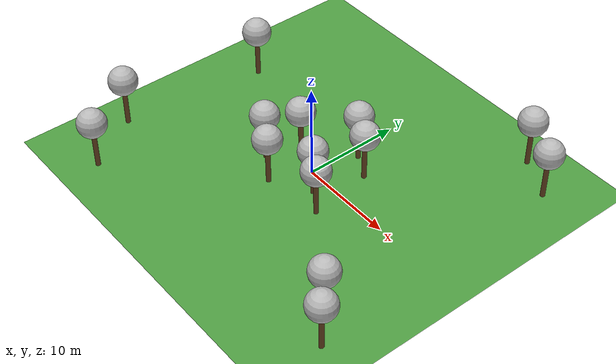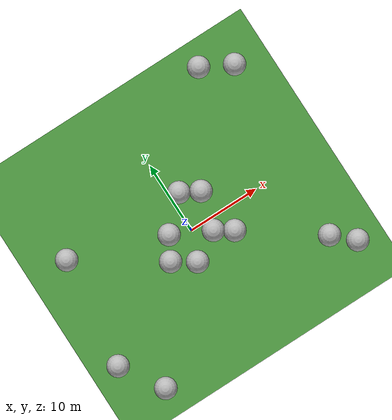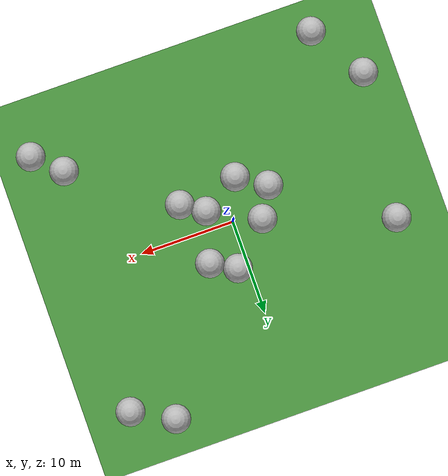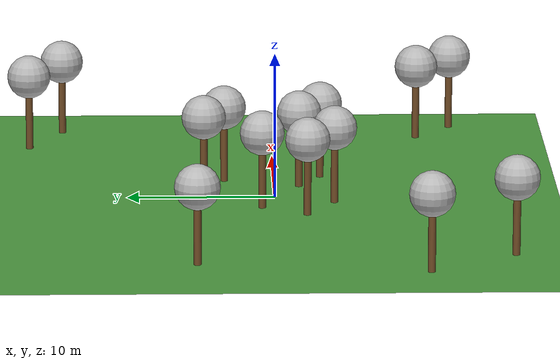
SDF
<?xml version="1.0" ?>
<?xml-model href="http://sdformat.org/schemas/root.xsd" schematypens="http://www.w3.org/2001/XMLSchema"?>
<sdf version="1.5">
  <world name="default">
    <plugin name="mrs_gazebo_static_transform_republisher_plugin" filename="libMrsGazeboCommonResources_StaticTransformRepublisher.so"/>

    <!-- coordinate system {-->
    <spherical_coordinates>
      <surface_model>EARTH_WGS84</surface_model>
      <latitude_deg>47.397743</latitude_deg>
      <longitude_deg>8.545594</longitude_deg>
      <elevation>0.0</elevation>
      <heading_deg>0</heading_deg>
    </spherical_coordinates>

    <!-- physics engine {-->
    <physics name="default_physics" default="0" type="ode">
      <gravity>0 0 -9.8066</gravity>
      <ode>
        <solver>
          <type>quick</type>
          <iters>50</iters>
          <sor>1.0</sor>
          <use_dynamic_moi_rescaling>0</use_dynamic_moi_rescaling>
        </solver>
        <constraints>
          <cfm>0</cfm>
          <erp>0.2</erp>
          <contact_max_correcting_vel>1000</contact_max_correcting_vel>
          <contact_surface_layer>0.001</contact_surface_layer>
        </constraints>
      </ode>
      <max_step_size>0.001</max_step_size>
      <real_time_factor>1</real_time_factor>
      <real_time_update_rate>1000</real_time_update_rate>
      <magnetic_field>6.0e-06 2.3e-05 -4.2e-05</magnetic_field>
    </physics>

    <!-- scene {-->
    <scene>
      <shadows>false</shadows>
    </scene>

    <!-- sun {-->
    <light type="directional" name="sun">
      <cast_shadows>true</cast_shadows>
      <pose>250 250 600 0 0 0</pose>
      <diffuse>0.8 0.8 0.8 1</diffuse>
      <specular>0.2 0.2 0.2 1</specular>
      <attenuation>
        <range>1000</range>
        <constant>0.9</constant>
        <linear>0.01</linear>
        <quadratic>0.001</quadratic>
      </attenuation>
      <direction>0 0 -1</direction>
    </light>

    <!-- Trees {-->
    <!-- Centered at (0,0) {-->
    <model name='tree_simple001'>
      <static>1</static>
      <link name='link'>
        <pose frame=''>0 0 0.1 0 -0 0</pose>
        <collision name='collision_trunk'>
          <pose frame=''>0 0 2 0 -0 0</pose>
          <geometry>
            <cylinder>
              <radius>0.25</radius>
              <length>4</length>
            </cylinder>
          </geometry>
        </collision>
        <collision name='collision_treetop'>
          <pose frame=''>0 0 5.2 0 -0 0</pose>
          <geometry>
            <sphere>
              <radius>1.5</radius>
            </sphere>
          </geometry>
        </collision>
        <visual name='trunk'>
          <pose frame=''>0 0 2 0 -0 0</pose>
          <geometry>
            <cylinder>
              <radius>0.25</radius>
              <length>4</length>
            </cylinder>
          </geometry>
          <material>
            <script>
              <uri>model://tree_simple/scripts</uri>
              <uri>model://tree_simple/materials/textures</uri>
              <name>TreeSimple/Trunk</name>
            </script>
          </material>
        </visual>
        <visual name='treetop'>
          <pose frame=''>0 0 5.2 0 -0 0</pose>
          <geometry>
            <sphere>
              <radius>1.5</radius>
            </sphere>
          </geometry>
          <material>
            <script>
              <uri>model://tree_simple/scripts</uri>
              <uri>model://tree_simple/materials/textures</uri>
              <name>TreeSimple/Treetop</name>
            </script>
          </material>
        </visual>
        <self_collide>0</self_collide>
        <kinematic>0</kinematic>
      </link>
      <pose frame=''>2.3 -1.7 0 0 -0 0</pose>
    </model>

    <model name='tree_simple002'>
      <static>1</static>
      <link name='link'>
        <pose frame=''>0 0 0.1 0 -0 0</pose>
        <collision name='collision_trunk'>
          <pose frame=''>0 0 2 0 -0 0</pose>
          <geometry>
            <cylinder>
              <radius>0.25</radius>
              <length>4</length>
            </cylinder>
          </geometry>
        </collision>
        <collision name='collision_treetop'>
          <pose frame=''>0 0 5.2 0 -0 0</pose>
          <geometry>
            <sphere>
              <radius>1.5</radius>
            </sphere>
          </geometry>
        </collision>
        <visual name='trunk'>
          <pose frame=''>0 0 2 0 -0 0</pose>
          <geometry>
            <cylinder>
              <radius>0.25</radius>
              <length>4</length>
            </cylinder>
          </geometry>
          <material>
            <script>
              <uri>model://tree_simple/scripts</uri>
              <uri>model://tree_simple/materials/textures</uri>
              <name>TreeSimple/Trunk</name>
            </script>
          </material>
        </visual>
        <visual name='treetop'>
          <pose frame=''>0 0 5.2 0 -0 0</pose>
          <geometry>
            <sphere>
              <radius>1.5</radius>
            </sphere>
          </geometry>
          <material>
            <script>
              <uri>model://tree_simple/scripts</uri>
              <uri>model://tree_simple/materials/textures</uri>
              <name>TreeSimple/Treetop</name>
            </script>
          </material>
        </visual>
        <self_collide>0</self_collide>
        <kinematic>0</kinematic>
      </link>
      <pose frame=''>-2.8 0.9 0 0 -0 0</pose>
    </model>

    <model name='tree_simple003'>
      <static>1</static>
      <link name='link'>
        <pose frame=''>0 0 0.1 0 -0 0</pose>
        <collision name='collision_trunk'>
          <pose frame=''>0 0 2 0 -0 0</pose>
          <geometry>
            <cylinder>
              <radius>0.25</radius>
              <length>4</length>
            </cylinder>
          </geometry>
        </collision>
        <collision name='collision_treetop'>
          <pose frame=''>0 0 5.2 0 -0 0</pose>
          <geometry>
            <sphere>
              <radius>1.5</radius>
            </sphere>
          </geometry>
        </collision>
        <visual name='trunk'>
          <pose frame=''>0 0 2 0 -0 0</pose>
          <geometry>
            <cylinder>
              <radius>0.25</radius>
              <length>4</length>
            </cylinder>
          </geometry>
          <material>
            <script>
              <uri>model://tree_simple/scripts</uri>
              <uri>model://tree_simple/materials/textures</uri>
              <name>TreeSimple/Trunk</name>
            </script>
          </material>
        </visual>
        <visual name='treetop'>
          <pose frame=''>0 0 5.2 0 -0 0</pose>
          <geometry>
            <sphere>
              <radius>1.5</radius>
            </sphere>
          </geometry>
          <material>
            <script>
              <uri>model://tree_simple/scripts</uri>
              <uri>model://tree_simple/materials/textures</uri>
              <name>TreeSimple/Treetop</name>
            </script>
          </material>
        </visual>
        <self_collide>0</self_collide>
        <kinematic>0</kinematic>
      </link>
      <pose frame=''>3.7 3.4 0 0 -0 0</pose>
    </model>

    <model name='tree_simple004'>
      <static>1</static>
      <link name='link'>
        <pose frame=''>0 0 0.1 0 -0 0</pose>
        <collision name='collision_trunk'>
          <pose frame=''>0 0 2 0 -0 0</pose>
          <geometry>
            <cylinder>
              <radius>0.25</radius>
              <length>4</length>
            </cylinder>
          </geometry>
        </collision>
        <collision name='collision_treetop'>
          <pose frame=''>0 0 5.2 0 -0 0</pose>
          <geometry>
            <sphere>
              <radius>1.5</radius>
            </sphere>
          </geometry>
        </collision>
        <visual name='trunk'>
          <pose frame=''>0 0 2 0 -0 0</pose>
          <geometry>
            <cylinder>
              <radius>0.25</radius>
              <length>4</length>
            </cylinder>
          </geometry>
          <material>
            <script>
              <uri>model://tree_simple/scripts</uri>
              <uri>model://tree_simple/materials/textures</uri>
              <name>TreeSimple/Trunk</name>
            </script>
          </material>
        </visual>
        <visual name='treetop'>
          <pose frame=''>0 0 5.2 0 -0 0</pose>
          <geometry>
            <sphere>
              <radius>1.5</radius>
            </sphere>
          </geometry>
          <material>
            <script>
              <uri>model://tree_simple/scripts</uri>
              <uri>model://tree_simple/materials/textures</uri>
              <name>TreeSimple/Treetop</name>
            </script>
          </material>
        </visual>
        <self_collide>0</self_collide>
        <kinematic>0</kinematic>
      </link>
      <pose frame=''>-4.5 -2.1 0 0 -0 0</pose>
    </model>

    <model name='tree_simple005'>
      <static>1</static>
      <link name='link'>
        <pose frame=''>0 0 0.1 0 -0 0</pose>
        <collision name='collision_trunk'>
          <pose frame=''>0 0 2 0 -0 0</pose>
          <geometry>
            <cylinder>
              <radius>0.25</radius>
              <length>4</length>
            </cylinder>
          </geometry>
        </collision>
        <collision name='collision_treetop'>
          <pose frame=''>0 0 5.2 0 -0 0</pose>
          <geometry>
            <sphere>
              <radius>1.5</radius>
            </sphere>
          </geometry>
        </collision>
        <visual name='trunk'>
          <pose frame=''>0 0 2 0 -0 0</pose>
          <geometry>
            <cylinder>
              <radius>0.25</radius>
              <length>4</length>
            </cylinder>
          </geometry>
          <material>
            <script>
              <uri>model://tree_simple/scripts</uri>
              <uri>model://tree_simple/materials/textures</uri>
              <name>TreeSimple/Trunk</name>
            </script>
          </material>
        </visual>
        <visual name='treetop'>
          <pose frame=''>0 0 5.2 0 -0 0</pose>
          <geometry>
            <sphere>
              <radius>1.5</radius>
            </sphere>
          </geometry>
          <material>
            <script>
              <uri>model://tree_simple/scripts</uri>
              <uri>model://tree_simple/materials/textures</uri>
              <name>TreeSimple/Treetop</name>
            </script>
          </material>
        </visual>
        <self_collide>0</self_collide>
        <kinematic>0</kinematic>
      </link>
      <pose frame=''>1.2 4.8 0 0 -0 0</pose>
    </model>

    <model name='tree_simple006'>
      <static>1</static>
      <link name='link'>
        <pose frame=''>0 0 0.1 0 -0 0</pose>
        <collision name='collision_trunk'>
          <pose frame=''>0 0 2 0 -0 0</pose>
          <geometry>
            <cylinder>
              <radius>0.25</radius>
              <length>4</length>
            </cylinder>
          </geometry>
        </collision>
        <collision name='collision_treetop'>
          <pose frame=''>0 0 5.2 0 -0 0</pose>
          <geometry>
            <sphere>
              <radius>1.5</radius>
            </sphere>
          </geometry>
        </collision>
        <visual name='trunk'>
          <pose frame=''>0 0 2 0 -0 0</pose>
          <geometry>
            <cylinder>
              <radius>0.25</radius>
              <length>4</length>
            </cylinder>
          </geometry>
          <material>
            <script>
              <uri>model://tree_simple/scripts</uri>
              <uri>model://tree_simple/materials/textures</uri>
              <name>TreeSimple/Trunk</name>
            </script>
          </material>
        </visual>
        <visual name='treetop'>
          <pose frame=''>0 0 5.2 0 -0 0</pose>
          <geometry>
            <sphere>
              <radius>1.5</radius>
            </sphere>
          </geometry>
          <material>
            <script>
              <uri>model://tree_simple/scripts</uri>
              <uri>model://tree_simple/materials/textures</uri>
              <name>TreeSimple/Treetop</name>
            </script>
          </material>
        </visual>
        <self_collide>0</self_collide>
        <kinematic>0</kinematic>
      </link>
      <pose frame=''>-1.6 -4.0 0 0 -0 0</pose>
    </model>

    <model name='tree_simple007'>
      <static>1</static>
      <link name='link'>
        <pose frame=''>0 0 0.1 0 -0 0</pose>
        <collision name='collision_trunk'>
          <pose frame=''>0 0 2 0 -0 0</pose>
          <geometry>
            <cylinder>
              <radius>0.25</radius>
              <length>4</length>
            </cylinder>
          </geometry>
        </collision>
        <collision name='collision_treetop'>
          <pose frame=''>0 0 5.2 0 -0 0</pose>
          <geometry>
            <sphere>
              <radius>1.5</radius>
            </sphere>
          </geometry>
        </collision>
        <visual name='trunk'>
          <pose frame=''>0 0 2 0 -0 0</pose>
          <geometry>
            <cylinder>
              <radius>0.25</radius>
              <length>4</length>
            </cylinder>
          </geometry>
          <material>
            <script>
              <uri>model://tree_simple/scripts</uri>
              <uri>model://tree_simple/materials/textures</uri>
              <name>TreeSimple/Trunk</name>
            </script>
          </material>
        </visual>
        <visual name='treetop'>
          <pose frame=''>0 0 5.2 0 -0 0</pose>
          <geometry>
            <sphere>
              <radius>1.5</radius>
            </sphere>
          </geometry>
          <material>
            <script>
              <uri>model://tree_simple/scripts</uri>
              <uri>model://tree_simple/materials/textures</uri>
              <name>TreeSimple/Treetop</name>
            </script>
          </material>
        </visual>
        <self_collide>0</self_collide>
        <kinematic>0</kinematic>
      </link>
      <pose frame=''>4.6 -3.2 0 0 -0 0</pose>
    </model>

    <!-- Shifted {-->
    <model name='tree_simple008'>
      <static>1</static>
      <link name='link'>
        <pose frame=''>0 0 0.1 0 -0 0</pose>
        <collision name='collision_trunk'>
          <pose frame=''>0 0 2 0 -0 0</pose>
          <geometry>
            <cylinder>
              <radius>0.25</radius>
              <length>4</length>
            </cylinder>
          </geometry>
        </collision>
        <collision name='collision_treetop'>
          <pose frame=''>0 0 5.2 0 -0 0</pose>
          <geometry>
            <sphere>
              <radius>1.5</radius>
            </sphere>
          </geometry>
        </collision>
        <visual name='trunk'>
          <pose frame=''>0 0 2 0 -0 0</pose>
          <geometry>
            <cylinder>
              <radius>0.25</radius>
              <length>4</length>
            </cylinder>
          </geometry>
          <material>
            <script>
              <uri>model://tree_simple/scripts</uri>
              <uri>model://tree_simple/materials/textures</uri>
              <name>TreeSimple/Trunk</name>
            </script>
          </material>
        </visual>
        <visual name='treetop'>
          <pose frame=''>0 0 5.2 0 -0 0</pose>
          <geometry>
            <sphere>
              <radius>1.5</radius>
            </sphere>
          </geometry>
          <material>
            <script>
              <uri>model://tree_simple/scripts</uri>
              <uri>model://tree_simple/materials/textures</uri>
              <name>TreeSimple/Treetop</name>
            </script>
          </material>
        </visual>
        <self_collide>0</self_collide>
        <kinematic>0</kinematic>
      </link>
      <pose frame=''>14.5 -10.3 0 0 -0 0</pose>
    </model>

    <model name='tree_simple009'>
      <static>1</static>
      <link name='link'>
        <pose frame=''>0 0 0.1 0 -0 0</pose>
        <collision name='collision_trunk'>
          <pose frame=''>0 0 2 0 -0 0</pose>
          <geometry>
            <cylinder>
              <radius>0.25</radius>
              <length>4</length>
            </cylinder>
          </geometry>
        </collision>
        <collision name='collision_treetop'>
          <pose frame=''>0 0 5.2 0 -0 0</pose>
          <geometry>
            <sphere>
              <radius>1.5</radius>
            </sphere>
          </geometry>
        </collision>
        <visual name='trunk'>
          <pose frame=''>0 0 2 0 -0 0</pose>
          <geometry>
            <cylinder>
              <radius>0.25</radius>
              <length>4</length>
            </cylinder>
          </geometry>
          <material>
            <script>
              <uri>model://tree_simple/scripts</uri>
              <uri>model://tree_simple/materials/textures</uri>
              <name>TreeSimple/Trunk</name>
            </script>
          </material>
        </visual>
        <visual name='treetop'>
          <pose frame=''>0 0 5.2 0 -0 0</pose>
          <geometry>
            <sphere>
              <radius>1.5</radius>
            </sphere>
          </geometry>
          <material>
            <script>
              <uri>model://tree_simple/scripts</uri>
              <uri>model://tree_simple/materials/textures</uri>
              <name>TreeSimple/Treetop</name>
            </script>
          </material>
        </visual>
        <self_collide>0</self_collide>
        <kinematic>0</kinematic>
      </link>
    <pose frame=''>-15.6 5.3 0 0 -0 0</pose>
    </model>

    <model name='tree_simple010'>
      <static>1</static>
      <link name='link'>
        <pose frame=''>0 0 0.1 0 -0 0</pose>
        <collision name='collision_trunk'>
          <pose frame=''>0 0 2 0 -0 0</pose>
          <geometry>
            <cylinder>
              <radius>0.25</radius>
              <length>4</length>
            </cylinder>
          </geometry>
        </collision>
        <collision name='collision_treetop'>
          <pose frame=''>0 0 5.2 0 -0 0</pose>
          <geometry>
            <sphere>
              <radius>1.5</radius>
            </sphere>
          </geometry>
        </collision>
        <visual name='trunk'>
          <pose frame=''>0 0 2 0 -0 0</pose>
          <geometry>
            <cylinder>
              <radius>0.25</radius>
              <length>4</length>
            </cylinder>
          </geometry>
          <material>
            <script>
              <uri>model://tree_simple/scripts</uri>
              <uri>model://tree_simple/materials/textures</uri>
              <name>TreeSimple/Trunk</name>
            </script>
          </material>
        </visual>
        <visual name='treetop'>
          <pose frame=''>0 0 5.2 0 -0 0</pose>
          <geometry>
            <sphere>
              <radius>1.5</radius>
            </sphere>
          </geometry>
          <material>
            <script>
              <uri>model://tree_simple/scripts</uri>
              <uri>model://tree_simple/materials/textures</uri>
              <name>TreeSimple/Treetop</name>
            </script>
          </material>
        </visual>
        <self_collide>0</self_collide>
        <kinematic>0</kinematic>
      </link>
    <pose frame=''>16.2 14.8 0 0 -0 0</pose>
    </model>

    <model name='tree_simple011'>
      <static>1</static>
      <link name='link'>
        <pose frame=''>0 0 0.1 0 -0 0</pose>
        <collision name='collision_trunk'>
          <pose frame=''>0 0 2 0 -0 0</pose>
          <geometry>
            <cylinder>
              <radius>0.25</radius>
              <length>4</length>
            </cylinder>
          </geometry>
        </collision>
        <collision name='collision_treetop'>
          <pose frame=''>0 0 5.2 0 -0 0</pose>
          <geometry>
            <sphere>
              <radius>1.5</radius>
            </sphere>
          </geometry>
        </collision>
        <visual name='trunk'>
          <pose frame=''>0 0 2 0 -0 0</pose>
          <geometry>
            <cylinder>
              <radius>0.25</radius>
              <length>4</length>
            </cylinder>
          </geometry>
          <material>
            <script>
              <uri>model://tree_simple/scripts</uri>
              <uri>model://tree_simple/materials/textures</uri>
              <name>TreeSimple/Trunk</name>
            </script>
          </material>
        </visual>
        <visual name='treetop'>
          <pose frame=''>0 0 5.2 0 -0 0</pose>
          <geometry>
            <sphere>
              <radius>1.5</radius>
            </sphere>
          </geometry>
          <material>
            <script>
              <uri>model://tree_simple/scripts</uri>
              <uri>model://tree_simple/materials/textures</uri>
              <name>TreeSimple/Treetop</name>
            </script>
          </material>
        </visual>
        <self_collide>0</self_collide>
        <kinematic>0</kinematic>
      </link>
    <pose frame=''>-17.4 -9.7 0 0 -0 0</pose>
    </model>

    <model name='tree_simple012'>
      <static>1</static>
      <link name='link'>
        <pose frame=''>0 0 0.1 0 -0 0</pose>
        <collision name='collision_trunk'>
          <pose frame=''>0 0 2 0 -0 0</pose>
          <geometry>
            <cylinder>
              <radius>0.25</radius>
              <length>4</length>
            </cylinder>
          </geometry>
        </collision>
        <collision name='collision_treetop'>
          <pose frame=''>0 0 5.2 0 -0 0</pose>
          <geometry>
            <sphere>
              <radius>1.5</radius>
            </sphere>
          </geometry>
        </collision>
        <visual name='trunk'>
          <pose frame=''>0 0 2 0 -0 0</pose>
          <geometry>
            <cylinder>
              <radius>0.25</radius>
              <length>4</length>
            </cylinder>
          </geometry>
          <material>
            <script>
              <uri>model://tree_simple/scripts</uri>
              <uri>model://tree_simple/materials/textures</uri>
              <name>TreeSimple/Trunk</name>
            </script>
          </material>
        </visual>
        <visual name='treetop'>
          <pose frame=''>0 0 5.2 0 -0 0</pose>
          <geometry>
            <sphere>
              <radius>1.5</radius>
            </sphere>
          </geometry>
          <material>
            <script>
              <uri>model://tree_simple/scripts</uri>
              <uri>model://tree_simple/materials/textures</uri>
              <name>TreeSimple/Treetop</name>
            </script>
          </material>
        </visual>
        <self_collide>0</self_collide>
        <kinematic>0</kinematic>
      </link>
    <pose frame=''>12.1 17.0 0 0 -0 0</pose>
    </model>

    <model name='tree_simple013'>
      <static>1</static>
      <link name='link'>
        <pose frame=''>0 0 0.1 0 -0 0</pose>
        <collision name='collision_trunk'>
          <pose frame=''>0 0 2 0 -0 0</pose>
          <geometry>
            <cylinder>
              <radius>0.25</radius>
              <length>4</length>
            </cylinder>
          </geometry>
        </collision>
        <collision name='collision_treetop'>
          <pose frame=''>0 0 5.2 0 -0 0</pose>
          <geometry>
            <sphere>
              <radius>1.5</radius>
            </sphere>
          </geometry>
        </collision>
        <visual name='trunk'>
          <pose frame=''>0 0 2 0 -0 0</pose>
          <geometry>
            <cylinder>
              <radius>0.25</radius>
              <length>4</length>
            </cylinder>
          </geometry>
          <material>
            <script>
              <uri>model://tree_simple/scripts</uri>
              <uri>model://tree_simple/materials/textures</uri>
              <name>TreeSimple/Trunk</name>
            </script>
          </material>
        </visual>
        <visual name='treetop'>
          <pose frame=''>0 0 5.2 0 -0 0</pose>
          <geometry>
            <sphere>
              <radius>1.5</radius>
            </sphere>
          </geometry>
          <material>
            <script>
              <uri>model://tree_simple/scripts</uri>
              <uri>model://tree_simple/materials/textures</uri>
              <name>TreeSimple/Treetop</name>
            </script>
          </material>
        </visual>
        <self_collide>0</self_collide>
        <kinematic>0</kinematic>
      </link>
    <pose frame=''>-13.8 -15.4 0 0 -0 0</pose>
    </model>

    <model name='tree_simple014'>
      <static>1</static>
      <link name='link'>
        <pose frame=''>0 0 0.1 0 -0 0</pose>
        <collision name='collision_trunk'>
          <pose frame=''>0 0 2 0 -0 0</pose>
          <geometry>
            <cylinder>
              <radius>0.25</radius>
              <length>4</length>
            </cylinder>
          </geometry>
        </collision>
        <collision name='collision_treetop'>
          <pose frame=''>0 0 5.2 0 -0 0</pose>
          <geometry>
            <sphere>
              <radius>1.5</radius>
            </sphere>
          </geometry>
        </collision>
        <visual name='trunk'>
          <pose frame=''>0 0 2 0 -0 0</pose>
          <geometry>
            <cylinder>
              <radius>0.25</radius>
              <length>4</length>
            </cylinder>
          </geometry>
          <material>
            <script>
              <uri>model://tree_simple/scripts</uri>
              <uri>model://tree_simple/materials/textures</uri>
              <name>TreeSimple/Trunk</name>
            </script>
          </material>
        </visual>
        <visual name='treetop'>
          <pose frame=''>0 0 5.2 0 -0 0</pose>
          <geometry>
            <sphere>
              <radius>1.5</radius>
            </sphere>
          </geometry>
          <material>
            <script>
              <uri>model://tree_simple/scripts</uri>
              <uri>model://tree_simple/materials/textures</uri>
              <name>TreeSimple/Treetop</name>
            </script>
          </material>
        </visual>
        <self_collide>0</self_collide>
        <kinematic>0</kinematic>
      </link>
    <pose frame=''>17.2 -12.8 0 0 -0 0</pose>
    </model>

    <!-- ground plane {-->
<model name="ground_plane">
      <static>true</static>
      <link name="link">
        <collision name="collision">
          <pose>0 0 0 0 0 0</pose>
          <geometry>
            <plane>
              <normal>0 0 1</normal>
              <size>250 250</size>
            </plane>
          </geometry>
          <surface>
            <friction>
              <ode>
                <mu>1</mu>
                <mu2>1</mu2>
              </ode>
            </friction>
          </surface>
        </collision>
        <visual name="grass">
          <pose>0 0 0 0 0 0</pose>
          <cast_shadows>false</cast_shadows>
          <geometry>
            <plane>
              <normal>0 0 1</normal>
              <size>150 250</size>
            </plane>
          </geometry>
          <material>
            <script>
              <uri>file://media/materials/scripts/Gazebo.material</uri>
              <name>Gazebo/Grass</name>
            </script>
          </material>
        </visual>
      </link>
    </model>

    <!-- gui {-->
    <gui>
      <camera name="camera">
        <pose>-60 -100 30 0 0.4 0.89</pose>
      </camera>
    </gui>

    <!-- GUI frame synchronization {-->
    <plugin name="mrs_gazebo_rviz_cam_synchronizer" filename="libMrsGazeboCommonResources_RvizCameraSynchronizer.so" >
      <target_frame_id>gazebo_user_camera</target_frame_id>
      <world_origin_frame_id>uav1/gps_origin</world_origin_frame_id>
      <frame_to_follow>uav1::base_link</frame_to_follow>
    </plugin>

  </world>
</sdf>
